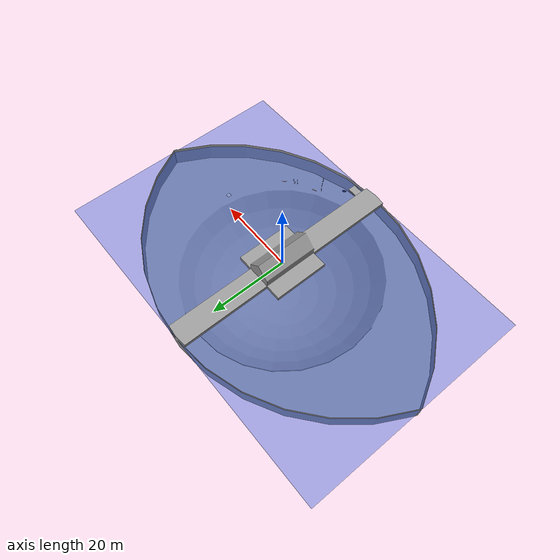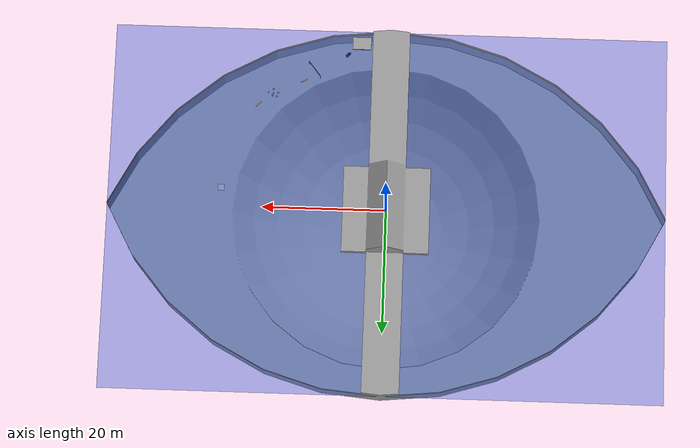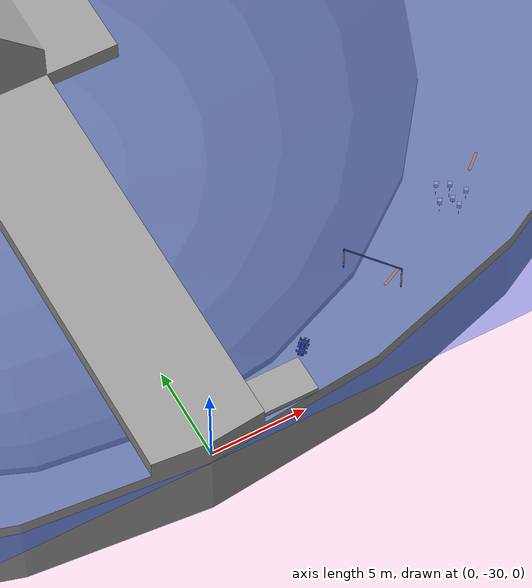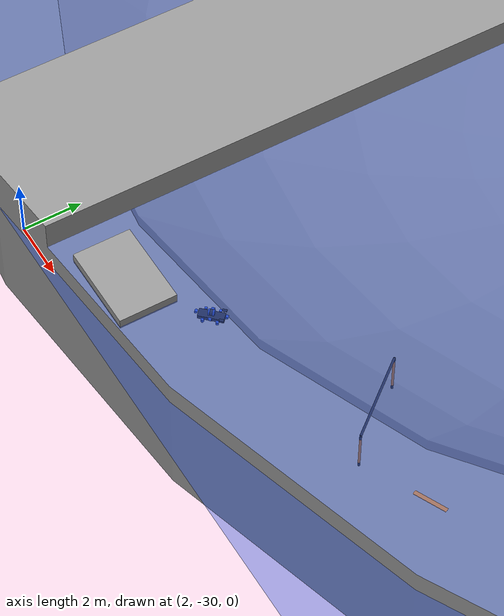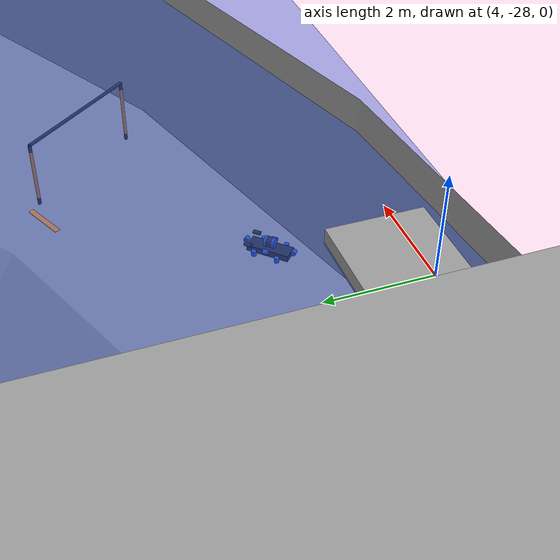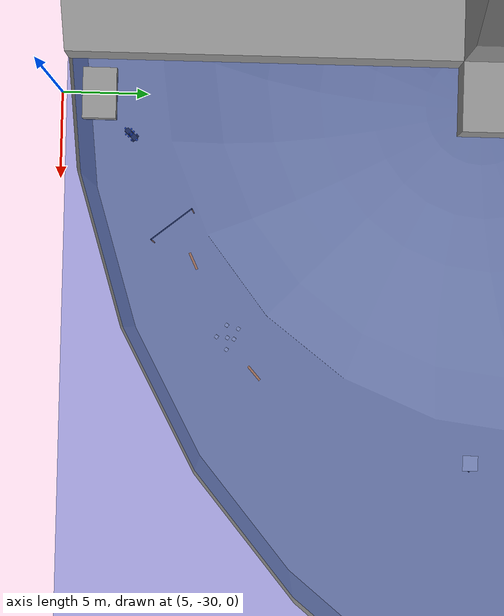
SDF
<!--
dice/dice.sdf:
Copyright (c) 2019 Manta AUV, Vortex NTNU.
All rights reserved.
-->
<?xml version="1.0" ?>
<sdf version="1.5">
  <world name="default">
    <gui>
      <camera name="user_camera">
        <pose>4.31615 -34.1599 10.3989 0 0.839643 1.0962</pose>
      </camera>
    </gui>

    <scene>
          <ambient>0.25 0.3 1 1</ambient>
          <grid>0</grid>
          <background>0.25 0.3 1 1</background>
          <shadows>1</shadows>
    </scene>

    <light type="directional" name="sun0">
      <cast_shadows>1</cast_shadows>
      <pose>8 -21 10 0 0.8 -2.8</pose>
      <diffuse>0.8 0.8 0.8 1</diffuse>
      <specular>0.2 0.2 0.2 1</specular>
      <attenuation>
        <range>1000</range>
        <constant>0.9</constant>
        <linear>0.01</linear>
        <quadratic>0.001</quadratic>
      </attenuation>
      <direction>-0.5 0.1 -0.9</direction>
    </light>
    <light type="directional" name="sun1">
      <cast_shadows>1</cast_shadows>
      <pose>8 -20 10 0 0.8 0</pose>
      <diffuse>0.8 0.8 0.8 1</diffuse>
      <specular>0.2 0.2 0.2 1</specular>
      <attenuation>
        <range>1000</range>
        <constant>0.9</constant>
        <linear>0.01</linear>
        <quadratic>0.001</quadratic>
      </attenuation>
      <direction>-0.5 0.1 -0.9</direction>
    </light>
    <light type="directional" name="sun2">
      <cast_shadows>1</cast_shadows>
      <pose>8 -19 10 0 0 0</pose>
      <diffuse>0.8 0.8 0.8 1</diffuse>
      <specular>0.2 0.2 0.2 1</specular>
      <attenuation>
        <range>1000</range>
        <constant>0.9</constant>
        <linear>0.01</linear>
        <quadratic>0.001</quadratic>
      </attenuation>
      <direction>-0.5 0.1 -0.9</direction>
    </light>
    <light type="directional" name="sun3">
      <cast_shadows>1</cast_shadows>
      <pose>8 -19 10 1.75 0 0</pose>
      <diffuse>0.8 0.8 0.8 1</diffuse>
      <specular>0.2 0.2 0.2 1</specular>
      <attenuation>
        <range>1000</range>
        <constant>0.9</constant>
        <linear>0.01</linear>
        <quadratic>0.001</quadratic>
      </attenuation>
      <direction>-0.5 0.1 -0.9</direction>
    </light>
    <light type="directional" name="sun4">
      <cast_shadows>1</cast_shadows>
      <pose>8 -19 10 1.75 0 2.9</pose>
      <diffuse>0.8 0.8 0.8 1</diffuse>
      <specular>0.2 0.2 0.2 1</specular>
      <attenuation>
        <range>1000</range>
        <constant>0.9</constant>
        <linear>0.01</linear>
        <quadratic>0.001</quadratic>
      </attenuation>
      <direction>-0.5 0.1 -0.9</direction>
    </light>

    <model name="ceiling_plane">
      <static>true</static>
      <pose>0 0 -0.8 0 0 0</pose>
      <link name="link">
        <visual name="visual">
          <cast_shadows>false</cast_shadows>
          <geometry>
            <box>
              <size>90 60 .001</size>
            </box>
          </geometry>
          <material>
            <script>
              <uri>file://media/materials/scripts/gazebo.material</uri>
              <name>Gazebo/BlueTransparent</name>
            </script>
          </material>
          <transparency>0.6</transparency>
        </visual>
      </link>
    </model>

    <include>
      <uri>model://pool</uri>
    </include>

    <!-- Side A -->
    <model name="dock_side_a">
      <static>true</static>
      <pose>4.8 -28.0 -0.67 0 0 0</pose>
      <link name="link">
        <collision name="collision">
          <geometry>
            <box>
              <size>3 2 0.35</size>
            </box>
          </geometry>
        </collision>
        <visual name="visual">
          <cast_shadows>true</cast_shadows>
          <geometry>
            <box>
              <size>3 2 0.35</size>
            </box>
          </geometry>
          <material>
            <script>
              <uri>file://media/materials/scripts/gazebo.material</uri>
              <name>Gazebo/Grey</name>
            </script>
          </material>
        </visual>
      </link>
    </model>

    <model name="pinger_a">
      <static>true</static>
      <pose>27.6 -4.1 -4.9 0 0 0</pose>
      <link name="link">
        <visual name="visual">
          <cast_shadows>true</cast_shadows>
          <geometry>
            <cylinder>
                <radius> 0.03 </radius>
                <length> 0.15 </length>
            </cylinder>
          </geometry>
          <material>
            <script>
              <uri>file://media/materials/scripts/gazebo.material</uri>
              <name>Gazebo/FlatBlack</name>
            </script>
          </material>
        </visual>
      </link>
    </model>

    <include>
      <name>gate_side_a</name>
      <pose>12.4 -23.6 -0.9 0 0 -0.9</pose>
      <uri>model://2018/gate</uri>
    </include>

    <include>
      <name>dice_side_a</name>
      <pose>19.0 -20.2 -5.0 0 0 -0.6</pose>
      <uri>model://2018/dice</uri>
    </include>

    <include>
      <name>path_marker1_side_a</name>
      <pose>14.2 -22.6 -5.0 0 0 -1.13</pose>
      <uri>model://2018/path_markers</uri>
    </include>

    <include>
      <name>path_marker2_side_a</name>
      <pose>21.5 -18.4 -5.0 0 0 -0.85</pose>
      <uri>model://2018/path_markers</uri>
    </include>

    <include>
      <name>roulette</name>
      <pose>27.0 -4.1 -5.0 0 0 0</pose>
      <uri>model://2018/roulette</uri>
    </include>

    <include>
        <name>robosub</name>
        <pose>7.0 -26.2 -1.2 0 0 0.8</pose>
        <uri>model://cobalt</uri>
    </include>

    <!-- Side B -->

    <!-- Side C -->

    <!-- Side D -->

  </world>
</sdf>

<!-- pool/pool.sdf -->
<sdf version='1.5'>

  <model name='transdec_pool'>
    <pose>0 0 0 0 0 0</pose>
    <self_collide> 0 </self_collide>
    <static> 1</static>

    <link name='pool'>
      <pose>0 0 0 0 0 0</pose>
      <visual name='pool_visual'>
        <geometry>
            <mesh><uri>file://pool/pool.dae</uri></mesh>
        </geometry>
        <material>
            <script>
              <uri>file://media/materials/scripts/gazebo.material</uri>
              <name>Gazebo/Grey</name>
            </script>
          </material>
      </visual>
      <collision name='pool_collision'>
        <geometry>
            <mesh><uri>file://pool/pool.dae</uri></mesh>
        </geometry>
      </collision>
    </link>

  </model>
</sdf>

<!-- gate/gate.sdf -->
<sdf version='1.5'>

  <model name='gate'>
    <pose>0 0 0 0 0 0</pose>
    <self_collide> 0 </self_collide>
    <static> 1</static>

    <link name='gate_top'>
      <pose>0 0 0 0 1.5707 0</pose>
      <visual name='gate_top_vis'>
        <geometry>
          <cylinder>
            <radius>0.0381</radius>
            <length>3.05</length>
          </cylinder>
        </geometry>
        <material>
          <script>
            <uri>file://media/materials/scripts/gazebo.material</uri>
            <name>Gazebo/FlatBlack</name>
          </script>
        </material>
      </visual>
      <collision name='gate_top_collide'>
        <geometry>
          <cylinder>
            <radius>0.0381</radius>
            <length>3.05</length>
          </cylinder>
        </geometry>
      </collision>
    </link>

    <link name='gate_right'>
      <pose>1.525 0 -0.762 0 0 0</pose>
      <visual name='gate_right_vis'>
        <geometry>
          <cylinder>
            <radius>0.0381</radius>
            <length>1.21</length>
          </cylinder>
        </geometry>
        <material>
          <script>
            <uri>file://media/materials/scripts/gazebo.material</uri>
            <name>Gazebo/Orange</name>
          </script>
          <diffuse>0.6 0.3088 0.0468 1</diffuse>
        </material>
      </visual>
      <visual name='gate_right_top'>
        <pose>0 0 0.6858 0 0 0</pose>
        <geometry>
          <cylinder>
            <radius>0.0381</radius>
            <length>0.16</length>
          </cylinder>
        </geometry>
        <material>
          <script>
            <uri>file://media/materials/scripts/gazebo.material</uri>
            <name>Gazebo/FlatBlack</name>
          </script>
        </material>
      </visual>
      <visual name='gate_right_bottom'>
        <pose>0 0 -0.6858 0 0 0</pose>
        <geometry>
          <cylinder>
            <radius>0.0381</radius>
            <length>0.16</length>
          </cylinder>
        </geometry>
        <material>
          <script>
              <uri>file://media/materials/scripts/gazebo.material</uri>
              <name>Gazebo/FlatBlack</name>
          </script>
        </material>
      </visual>
      <collision name='gate_right_collide'>
        <geometry>
          <cylinder>
            <radius>0.0381</radius>
            <length>1.52</length>
          </cylinder>
        </geometry>
      </collision>
    </link>

    <link name='gate_left'>
      <pose>-1.525 0 -0.762 0 0 0</pose>
      <visual name='gate_left_vis'>
        <geometry>
          <cylinder>
            <radius>0.0381</radius>
            <length>1.21</length>
          </cylinder>
        </geometry>
        <material>
          <script>
            <uri>file://media/materials/scripts/gazebo.material</uri>
            <name>Gazebo/Orange</name>
          </script>
          <diffuse>0.6 0.3088 0.0468 1</diffuse>
        </material>
      </visual>
      <visual name='gate_left_top'>
        <pose>0 0 0.6858 0 0 0</pose>
        <geometry>
          <cylinder>
            <radius>0.0381</radius>
            <length>0.16</length>
          </cylinder>
        </geometry>
        <material>
          <script>
            <uri>file://media/materials/scripts/gazebo.material</uri>
            <name>Gazebo/FlatBlack</name>
          </script>
        </material>
      </visual>
      <visual name='gate_left_bottom'>
        <pose>0 0 -0.6858 0 0 0</pose>
        <geometry>
          <cylinder>
            <radius>0.0381</radius>
            <length>0.16</length>
          </cylinder>
        </geometry>
        <material>
          <script>
              <uri>file://media/materials/scripts/gazebo.material</uri>
              <name>Gazebo/FlatBlack</name>
          </script>
        </material>
      </visual>
      <collision name='gate_left_collide'>
        <geometry>
          <cylinder>
            <radius>0.0381</radius>
            <length>1.52</length>
          </cylinder>
        </geometry>
      </collision>
    </link>

  </model>
</sdf>

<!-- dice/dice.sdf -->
<sdf version='1.5'>

  <model name='dice'>
    <pose>0 0 0 0 0 0</pose>
    <self_collide> 0 </self_collide>
    <static> 1</static>

    <link name='one_dice'>
      <pose>0.80 0.5 0.75 0 0 0</pose>
      <visual name='one_dice_vis'>
        <geometry>
          <box>
            <size>0.23 0.23 0.23</size>
          </box>
        </geometry>
        <material>
          <script>
            <uri>model://2018/dice/materials/scripts</uri>
            <uri>model://2018/dice/materials/textures</uri>
            <name>OneFace</name>
          </script>
        </material>
      </visual>

      <visual name='one_dice_cable'>
        <pose> 0 0 -0.375 0 0 0</pose>
        <geometry>
          <cylinder>
            <radius> 0.006 </radius>
            <length> 0.75 </length>
          </cylinder>
        </geometry>
        <material>
          <script>
            <uri> file://media/materials/scripts/gazebo.material</uri>
            <name> Gazebo/Grey </name>
          </script>
        </material>
      </visual>

      <collision name='one_dice_collide'>
        <geometry>
          <box>
            <size>0.23 0.23 0.23</size>
          </box>
        </geometry>
      </collision>
    </link>

    <link name='two_dice'>
      <pose>-0.75 0.35 1.25 0 0 0</pose>
      <visual name='two_dice_vis'>
        <geometry>
          <box>
            <size>0.23 0.23 0.23</size>
          </box>
        </geometry>
        <material>
          <script>
            <uri>model://2018/dice/materials/scripts</uri>
            <uri>model://2018/dice/materials/textures</uri>
            <name>TwoFace</name>
          </script>
        </material>
      </visual>

      <visual name='two_dice_cable'>
        <pose> 0 0 -0.625 0 0 0</pose>
        <geometry>
          <cylinder>
            <radius> 0.006 </radius>
            <length> 1.25 </length>
          </cylinder>
        </geometry>
        <material>
          <script>
            <uri> file://media/materials/scripts/gazebo.material</uri>
            <name> Gazebo/Grey </name>
          </script>
        </material>
      </visual>

      <collision name='two_dice_collide'>
        <geometry>
          <box>
            <size>0.23 0.23 0.23</size>
          </box>
        </geometry>
      </collision>
    </link>

    <link name='three_dice'>
      <pose>-0.05 0.50 1.15 0 0 0</pose>
      <visual name='three_dice_vis'>
        <geometry>
          <box>
            <size>0.23 0.23 0.23</size>
          </box>
        </geometry>
        <material>
          <script>
            <uri>model://2018/dice/materials/scripts</uri>
            <uri>model://2018/dice/materials/textures</uri>
            <name>ThreeFace</name>
          </script>
        </material>
      </visual>

      <visual name='three_dice_cable'>
        <pose> 0 0 -0.575 0 0 0</pose>
        <geometry>
          <cylinder>
            <radius> 0.006 </radius>
            <length> 1.15 </length>
          </cylinder>
        </geometry>
        <material>
          <script>
            <uri> file://media/materials/scripts/gazebo.material</uri>
            <name> Gazebo/Grey </name>
          </script>
        </material>
      </visual>

      <collision name='three_dice_collide'>
        <geometry>
          <box>
            <size>0.23 0.23 0.23</size>
          </box>
        </geometry>
      </collision>
    </link>

    <link name='four_dice'>
      <pose>0.5 -0.5 0.8 0 0 0</pose>
      <visual name='four_dice_vis'>
        <geometry>
          <box>
            <size>0.23 0.23 0.23</size>
          </box>
        </geometry>
        <material>
          <script>
            <uri>model://2018/dice/materials/scripts</uri>
            <uri>model://2018/dice/materials/textures</uri>
            <name>FourFace</name>
          </script>
        </material>
      </visual>

      <visual name='four_dice_cable'>
        <pose> 0 0 -0.4 0 0 0</pose>
        <geometry>
          <cylinder>
            <radius> 0.006 </radius>
            <length> 0.8 </length>
          </cylinder>
        </geometry>
        <material>
          <script>
            <uri> file://media/materials/scripts/gazebo.material</uri>
            <name> Gazebo/Grey </name>
          </script>
        </material>
      </visual>

      <collision name='four_dice_collide'>
        <geometry>
          <box>
            <size>0.23 0.23 0.23</size>
          </box>
        </geometry>
      </collision>
    </link>

    <link name='five_dice'>
      <pose>0.15 0.10 0.5 0 0 0</pose>
      <visual name='five_dice_vis'>
        <geometry>
          <box>
            <size>0.23 0.23 0.23</size>
          </box>
        </geometry>
        <material>
          <script>
            <uri>model://2018/dice/materials/scripts</uri>
            <uri>model://2018/dice/materials/textures</uri>
            <name>FiveFace</name>
          </script>
        </material>
      </visual>

      <visual name='five_dice_cable'>
        <pose> 0 0 -0.25 0 0 0</pose>
        <geometry>
          <cylinder>
            <radius> 0.006 </radius>
            <length> 0.5 </length>
          </cylinder>
        </geometry>
        <material>
          <script>
            <uri> file://media/materials/scripts/gazebo.material</uri>
            <name> Gazebo/Grey </name>
          </script>
        </material>
      </visual>

      <collision name='five_dice_collide'>
        <geometry>
          <box>
            <size>0.23 0.23 0.23</size>
          </box>
        </geometry>
      </collision>
    </link>

    <link name='six_dice'>
      <pose>-0.5 -0.4 0.85 0 0 0</pose>
      <visual name='six_dice_vis'>
        <geometry>
          <box>
            <size>0.23 0.23 0.23</size>
          </box>
        </geometry>
        <material>
          <script>
            <uri>model://2018/dice/materials/scripts</uri>
            <uri>model://2018/dice/materials/textures</uri>
            <name>SixFace</name>
          </script>
        </material>
      </visual>

      <visual name='six_dice_cable'>
        <pose> 0 0 -0.425 0 0 0</pose>
        <geometry>
          <cylinder>
            <radius> 0.006 </radius>
            <length> 0.85 </length>
          </cylinder>
        </geometry>
        <material>
          <script>
            <uri> file://media/materials/scripts/gazebo.material</uri>
            <name> Gazebo/Grey </name>
          </script>
        </material>
      </visual>

      <collision name='six_dice_collide'>
        <geometry>
          <box>
            <size>0.23 0.23 0.23</size>
          </box>
        </geometry>
      </collision>
    </link>

  </model>

</sdf>

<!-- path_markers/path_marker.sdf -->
<sdf version='1.5'>

  <model name='path_marker'>
    <pose>0 0 0 0 0 0</pose>
    <self_collide> 0 </self_collide>
    <static> 1</static>

    <link name='top'>
      <pose>0 0 0 0 0 0</pose>
      <visual name='top_vis'>
        <geometry>
            <box><size>0.15 1.2 0.02</size></box>
        </geometry>
        <material>
          <script>
            <uri>file://media/materials/scripts/gazebo.material</uri>
            <name>Gazebo/Orange</name>
          </script>
          <diffuse>0.6 0.3088 0.0468 1</diffuse>
        </material>
      </visual>
      <collision name='red_collide'>
        <pose>0 0 0 0 0 0</pose>
        <geometry>
            <box><size>0.15 1.2 0.02</size></box>
        </geometry>
      </collision>
    </link>

    <link name='legs'>
      <visual name='leg1'>
        <pose>0 0.5 -0.225 0 0 0</pose>
        <geometry>
          <cylinder>
            <radius>0.01</radius>
            <length>0.45</length>
          </cylinder>
        </geometry>
      </visual>
      <visual name='leg2'>
        <pose>0 -0.5 -0.225 0 0 0</pose>
        <geometry>
          <cylinder>
            <radius>0.01</radius>
            <length>0.45</length>
          </cylinder>
        </geometry>
      </visual>
      <visual name='leg_link'>
        <pose>0 0 -0.45 1.5707 0 0</pose>
        <geometry>
          <cylinder>
            <radius>0.01</radius>
            <length>1</length>
          </cylinder>
        </geometry>
      </visual>
      <collision name='leg_col'>
        <pose>0 0 -0.225 0 0 0</pose>
          <geometry>
            <box><size>0.15 1.2 0.45</size></box>
          </geometry>
      </collision>
    </link>

  </model>
</sdf>

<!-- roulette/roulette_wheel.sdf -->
<sdf version='1.5'>
  <model name='roulette_wheel'>

    <pose> 0 0 0 0 0 0</pose>
    <self_collide> 0 </self_collide>
    <static>0</static>

    <joint name='rotation_joint' type="revolute">
      <parent> roulette_stock </parent>
      <child> roulette_wheel </child>
      <axis>
        <xyz> 0 0 1 </xyz>
      </axis>
      <physics>
        <ode>
          <velocity> 1 </velocity>
        </ode>
      </physics>
    </joint>

    <link name='roulette_wheel'>
      <pose> 0 0 0.35 0 0 0</pose>
      <visual name='roulette_top'>
        <geometry>
          <box>
            <size>1.0 1.00 0.001</size>
          </box>
        </geometry>
        <material>
          <script>
            <uri>model://2018/roulette/materials/scripts</uri>
            <uri>model://2018/roulette/materials/textures</uri>
            <name>Roulette/Face</name>
          </script>
        </material>
      </visual>

      <collision name="roulette_wheel_collision">
        <geometry>
          <box>
            <size>1.0 1.00 0.001</size>
          </box>
        </geometry>
      </collision>
    </link>

    <link name='roulette_stock'>
      <pose> 0 0 0.174 0 0 0 </pose>
      <visual name='roulette_stock_vis'>
        <geometry>
          <cylinder>
            <radius>0.035</radius>
            <length>0.35</length>
          </cylinder>
        </geometry>
        <material>
          <script>
            <uri>file://media/materials/scripts/gazebo.material</uri>
            <name>Gazebo/Grey</name>
          </script>
        </material>
      </visual>
      <collision name='roulette_collide'>
        <geometry>
          <cylinder>
            <radius>0.5</radius>
            <length>0.35</length>
          </cylinder>
        </geometry>
      </collision>
    </link>

  </model>
</sdf>

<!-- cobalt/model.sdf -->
<sdf version='1.5'>

  <model name='robosub_cobalt'>
    <pose>0 0 0.0 0 0 0</pose>
    <self_collide> 0 </self_collide>

    <joint name="hull_frame" type="fixed">
        <parent>frame</parent>
        <child>hull</child>
    </joint>

    <joint name='dive_front_left_frame' type="fixed">
        <parent>frame</parent>
        <child>dive_front_left</child>
    </joint>

    <joint name='dive_front_right_frame' type="fixed">
        <parent>frame</parent>
        <child>dive_front_right</child>
    </joint>

    <joint name='dive_back_left_frame' type="fixed">
        <parent>frame</parent>
        <child>dive_back_left</child>
    </joint>

    <joint name='dive_back_right_frame' type="fixed">
        <parent>frame</parent>
        <child>dive_back_right</child>
    </joint>

    <joint name='strafe_front_frame' type="fixed">
        <parent>frame</parent>
        <child>strafe_front</child>
    </joint>

    <joint name='strafe_back_frame' type="fixed">
        <parent>frame</parent>
        <child>strafe_back</child>
    </joint>

    <joint name='forward_left_frame' type="fixed">
        <parent>frame</parent>
        <child>forward_left</child>
    </joint>

    <joint name='forward_right_frame' type="fixed">
        <parent>frame</parent>
        <child>forward_right</child>
    </joint>

    <joint name='left_camera_frame' type="fixed">
        <parent>frame</parent>
        <child>left_camera</child>
    </joint>

    <joint name='right_camera_frame' type="fixed">
        <parent>frame</parent>
        <child>right_camera</child>
    </joint>

    <joint name='bottom_camera_frame' type="fixed">
        <parent>frame</parent>
        <child>bottom_camera</child>
    </joint>

    <joint name='hydrophone_h0_frame' type="fixed">
        <parent>frame</parent>
        <child>hydrophone_h0</child>
    </joint>

    <joint name='hydrophone_hx_frame' type="fixed">
        <parent>frame</parent>
        <child>hydrophone_hx</child>
    </joint>

    <joint name='hydrophone_hy_frame' type="fixed">
        <parent>frame</parent>
        <child>hydrophone_hy</child>
    </joint>

    <joint name='hydrophone_hz_frame' type="fixed">
        <parent>frame</parent>
        <child>hydrophone_hz</child>
    </joint>

    <link name='hull'>
      <pose>0 0 .082 1.57079632679 0 1.57079632679 </pose>
      <inertial>
        <mass>10</mass>
      </inertial>

      <visual name='bulkhead_visual'>
        <geometry>
              <cylinder>
                <radius>0.1</radius>
                <length>.13</length>
              </cylinder>
        </geometry>
        <material>
            <script>
              <uri>file://media/materials/scripts/gazebo.material</uri>
              <name>Gazebo/Black</name>
            </script>
          </material>
      </visual>

      <visual name='front_ring_visual'>
      <pose>0 0 .075 0 0 0</pose>
        <geometry>
              <cylinder>
                <radius>0.102</radius>
                <length>.05</length>
              </cylinder>
        </geometry>
        <material>
            <script>
              <uri>file://media/materials/scripts/gazebo.material</uri>
              <name>Gazebo/Blue</name>
            </script>
          </material>
      </visual>
      <visual name='rear_ring_visual'>
      <pose>0 0 -.075 0 0 0</pose>
        <geometry>
              <cylinder>
                <radius>0.102</radius>
                <length>.05</length>
              </cylinder>
        </geometry>
        <material>
            <script>
              <uri>file://media/materials/scripts/gazebo.material</uri>
              <name>Gazebo/Blue</name>
            </script>
          </material>
      </visual>
      <visual name='front_tube_visual'>
      <pose>0 0 .235 0 0 0</pose>
        <geometry>
              <cylinder>
                <radius>0.1</radius>
                <length>.32</length>
              </cylinder>
        </geometry>
        <material>
            <script>
              <uri>file://media/materials/scripts/gazebo.material</uri>
              <name>Gazebo/GreyTransparent</name>
            </script>
            <diffuse>0.6 0.6 0.6 0.6</diffuse>
          </material>
      </visual>

      <visual name='rear_tube_visual'>
      <pose>0 0 -.235 0 0 0</pose>
        <geometry>
              <cylinder>
                <radius>0.1</radius>
                <length>.32</length>
              </cylinder>
        </geometry>
        <material>
            <script>
              <uri>file://media/materials/scripts/gazebo.material</uri>
              <name>Gazebo/GreyTransparent</name>
            </script>
            <diffuse>0.6 0.6 0.6 0.6</diffuse>
          </material>
      </visual>
      <collision name='hull_collision'>
        <geometry>
              <cylinder>
                <radius>0.1</radius>
                <length>.77</length>
              </cylinder>
            </geometry>
      </collision>
      <velocity_decay>
          <linear>0.002</linear>
          <angular>0.002</angular>
      </velocity_decay>
    </link>

    <link name='hydrophone_h0'>
      <pose> 0 0 0 0 0 0 </pose>
      <inertial>
        <mass> 0.001 </mass>
      </inertial>
    </link>

    <link name='hydrophone_hx'>
      <pose> 0.015 0 0 0 0 0 </pose>
      <inertial>
        <mass> 0.001 </mass>
      </inertial>
    </link>

    <link name='hydrophone_hy'>
      <pose> 0 0.015 0 0 0 0 </pose>
      <inertial>
        <mass> 0.001 </mass>
      </inertial>
    </link>

    <link name='hydrophone_hz'>
      <pose> 0 0 0.015 0 0 0 </pose>
      <inertial>
        <mass> 0.001 </mass>
      </inertial>
    </link>

    <link name='frame'>
      <pose>0 0 -0.088 0 0 0</pose>
      <inertial>
        <mass>16.5</mass>
      </inertial>

      <visual name='frame_visual'>
        <geometry>
              <box>
                <size>.85 .3 .13</size>
              </box>
            </geometry>
          <material>
            <script>
              <uri>file://media/materials/scripts/gazebo.material</uri>
              <name>Gazebo/FlatBlack</name>
            </script>
          </material>
      </visual>

      <collision name='frame_collision'>
        <geometry>
              <box>
                <size>.85 .3 .13</size>
              </box>
            </geometry>
      </collision>
      <velocity_decay>
          <linear>0.002</linear>
          <angular>0.002</angular>
      </velocity_decay>
    </link>

    <link name='dive_front_left'>
      <pose>0.235 0.23 -0.1 0 3.14159 0</pose>
      <inertial>
        <mass>0.344</mass>
      </inertial>
      <visual name='dive_front_left_visual'>
        <geometry>
          <cylinder>
            <radius>0.0485</radius>
            <length>0.101</length>
          </cylinder>
        </geometry>
      <material>
        <script>
          <uri>file://media/materials/scripts/gazebo.material</uri>
          <name>Gazebo/Blue</name>
        </script>
      </material>
      </visual>
      <collision name='dive_front_left_collision'>
        <geometry>
          <cylinder>
            <radius>0.0485</radius>
            <length>0.101</length>
          </cylinder>
        </geometry>
      </collision>
    </link>

    <link name='dive_front_right'>
      <pose>0.235 -0.23 -0.1 0 3.14159 0</pose>
      <inertial>
        <mass>0.344</mass>
      </inertial>
      <visual name='dive_front_right_visual'>
        <geometry>
          <cylinder>
            <radius>0.0485</radius>
            <length>0.101</length>
          </cylinder>
        </geometry>
      <material>
        <script>
          <uri>file://media/materials/scripts/gazebo.material</uri>
          <name>Gazebo/Blue</name>
        </script>
      </material>
      </visual>
      <collision name='dive_front_right_collision'>
        <geometry>
          <cylinder>
            <radius>0.0485</radius>
            <length>0.101</length>
          </cylinder>
        </geometry>
      </collision>
    </link>

    <link name='dive_back_left'>
      <pose>-0.235 0.23 -0.1 0 3.14159 0</pose>
      <inertial>
        <mass>0.344</mass>
      </inertial>
      <visual name='dive_back_left_visual'>
        <geometry>
          <cylinder>
            <radius>0.0485</radius>
            <length>0.101</length>
          </cylinder>
        </geometry>
      <material>
        <script>
          <uri>file://media/materials/scripts/gazebo.material</uri>
          <name>Gazebo/Blue</name>
        </script>
      </material>
      </visual>
      <collision name='dive_back_left_collision'>
        <geometry>
          <cylinder>
            <radius>0.0485</radius>
            <length>0.101</length>
          </cylinder>
        </geometry>
      </collision>
    </link>

    <link name='dive_back_right'>
      <pose>-0.235 -0.23 -0.1 0 3.14159 0</pose>
      <inertial>
        <mass>0.344</mass>
      </inertial>
      <visual name='dive_back_right_visual'>
        <geometry>
          <cylinder>
            <radius>0.0485</radius>
            <length>0.101</length>
          </cylinder>
        </geometry>
      <material>
        <script>
          <uri>file://media/materials/scripts/gazebo.material</uri>
          <name>Gazebo/Blue</name>
        </script>
      </material>
      </visual>
      <collision name='dive_back_right_collision'>
        <geometry>
          <cylinder>
            <radius>0.0485</radius>
            <length>0.101</length>
          </cylinder>
        </geometry>
      </collision>
    </link>

    <link name='strafe_front'>
      <pose>0.49 0 -0.01 -1.57079632679 0 0</pose>
      <inertial>
        <mass>0.344</mass>
      </inertial>
      <visual name='strafe_front_visual'>
        <geometry>
          <cylinder>
            <radius>0.0485</radius>
            <length>0.101</length>
          </cylinder>
        </geometry>
      <material>
        <script>
          <uri>file://media/materials/scripts/gazebo.material</uri>
          <name>Gazebo/Blue</name>
        </script>
      </material>
      </visual>
      <collision name='strafe_front_collision'>
        <geometry>
          <cylinder>
            <radius>0.0485</radius>
            <length>0.101</length>
          </cylinder>
        </geometry>
      </collision>
    </link>

    <link name='strafe_back'>
      <pose>-0.49 0 -0.01 -1.57079632679 0 0</pose>
      <inertial>
        <mass>0.344</mass>
      </inertial>
      <visual name='strafe_back_visual'>
        <geometry>
          <cylinder>
            <radius>0.0485</radius>
            <length>0.101</length>
          </cylinder>
        </geometry>
      <material>
        <script>
          <uri>file://media/materials/scripts/gazebo.material</uri>
          <name>Gazebo/Blue</name>
        </script>
      </material>
      </visual>
      <collision name='strafe_back_collision'>
        <geometry>
          <cylinder>
            <radius>0.0485</radius>
            <length>0.101</length>
          </cylinder>
        </geometry>
      </collision>
    </link>

    <link name='forward_left'>
      <pose>0 0.2075 -0.01 0 -1.57079632679 0</pose>
      <inertial>
        <mass>0.344</mass>
      </inertial>
      <visual name='forward_left_visual'>
        <geometry>
          <cylinder>
            <radius>0.0485</radius>
            <length>0.101</length>
          </cylinder>
        </geometry>
      <material>
        <script>
          <uri>file://media/materials/scripts/gazebo.material</uri>
          <name>Gazebo/Blue</name>
        </script>
      </material>
      </visual>
      <collision name='forward_left_collision'>
        <geometry>
          <cylinder>
            <radius>0.0485</radius>
            <length>0.101</length>
          </cylinder>
        </geometry>
      </collision>
    </link>

    <link name='forward_right'>
      <pose>0 -0.2075 -0.01 0 -1.57079632679 0</pose>
      <inertial>
        <mass>0.344</mass>
      </inertial>
      <visual name='forward_right_visual'>
        <geometry>
          <cylinder>
            <radius>0.0485</radius>
            <length>0.101</length>
          </cylinder>
        </geometry>
      <material>
        <script>
          <uri>file://media/materials/scripts/gazebo.material</uri>
          <name>Gazebo/Blue</name>
        </script>
      </material>
      </visual>
      <collision name='forward_right_collision'>
        <geometry>
          <cylinder>
            <radius>0.0485</radius>
            <length>0.101</length>
          </cylinder>
        </geometry>
      </collision>
    </link>

    <link name='left_camera'>
      <pose>0.37 0.20 0.04 0 1.57079632679 0</pose>
      <inertial>
        <mass>0.73</mass>
      </inertial>
      <visual name='left_camera_visual'>
        <geometry>
          <cylinder>
            <radius>0.0405</radius>
            <length>0.15</length>
          </cylinder>
        </geometry>
      <material>
        <script>
          <uri>file://media/materials/scripts/gazebo.material</uri>
          <name>Gazebo/Black</name>
        </script>
      </material>
      </visual>
      <collision name='left_camera_collision'>
        <geometry>
          <cylinder>
            <radius>0.0405</radius>
            <length>0.15</length>
          </cylinder>
        </geometry>
      </collision>
      <sensor name="left" type="wideanglecamera">
          <pose>0 0 0.14 0 -1.570796 0</pose>
          <camera>
              <horizontal_fov>3.1415</horizontal_fov>
              <image>
                  <width>1384</width>
                  <height>1032</height>
              </image>
              <clip>
                  <near>0.001</near>
                  <far>100</far>
              </clip>
              <lens>
                  <type>custom</type>
                  <custom_function>
                      <c1>685.4</c1>
                      <c2>525.2</c2>
                      <f>307.53251966606937</f>
                      <fun>tan</fun>
                  </custom_function>
                  <scale_to_hfov>true</scale_to_hfov>
                  <cutoff_angle>1.57075</cutoff_angle>
                  <env_texture_size>512</env_texture_size>
              </lens>
              <distortion>
                <k1>-.16492342967649815</k1>
                <k2>0.016187172468110342</k2>
                <k3>-0.00038951913220274415</k3>
                <p1>0</p1>
                <p2>0</p2>
                <center>0 0</center>
              </distortion>
          </camera>
          <plugin name="left_camera_controller" filename="libgazebo_ros_camera.so">
              <cameraName>left</cameraName>
              <imageTopicName>/camera/left/image_raw</imageTopicName>
          </plugin>
          <always_on>1</always_on>
          <update_rate>5</update_rate>
      </sensor>
    </link>

    <link name='right_camera'>
      <pose>0.37 -0.20 0.04 0 1.57079632679 0</pose>
      <inertial>
        <mass>0.73</mass>
      </inertial>
      <visual name='right_camera_visual'>
        <geometry>
          <cylinder>
            <radius>0.0405</radius>
            <length>0.15</length>
          </cylinder>
        </geometry>
      <material>
        <script>
          <uri>file://media/materials/scripts/gazebo.material</uri>
          <name>Gazebo/Black</name>
        </script>
      </material>
      </visual>
      <collision name='right_camera_collision'>
        <geometry>
          <cylinder>
            <radius>0.0405</radius>
            <length>0.15</length>
          </cylinder>
        </geometry>
      </collision>
      <sensor name="right" type="wideanglecamera">
          <pose>0 0 0.14 0 -1.570796 0</pose>
          <camera>
              <horizontal_fov>3.1415</horizontal_fov>
              <image>
                  <width>1384</width>
                  <height>1032</height>
              </image>
              <clip>
                  <near>0.1</near>
                  <far>100</far>
              </clip>
              <lens>
                  <type>custom</type>
                  <custom_function>
                      <c1>667.1</c1>
                      <c2>536.7</c2>
                      <f>317.86251966606937</f>
                      <fun>tan</fun>
                  </custom_function>
                  <scale_to_hfov>true</scale_to_hfov>
                  <cutoff_angle>1.57075</cutoff_angle>
                  <env_texture_size>512</env_texture_size>
              </lens>
              <distortion>
                <k1>-.16492342967649815</k1>
                <k2>0.016187172468110342</k2>
                <k3>-0.00038951913220274415</k3>
                <p1>0</p1>
                <p2>0</p2>
                <center>0 0</center>
              </distortion>
          </camera>
          <plugin name="right_camera_controller" filename="libgazebo_ros_camera.so">
              <cameraName>right</cameraName>
              <imageTopicName>/camera/right/image_raw</imageTopicName>
          </plugin>
          <always_on>1</always_on>
          <update_rate>5</update_rate>
      </sensor>
    </link>

    <link name='bottom_camera'>
      <pose>0 0 -0.1 0 3.14159265358 0</pose>
      <inertial>
        <mass>0.73</mass>
      </inertial>
      <visual name='bottom_camera_visual'>
        <geometry>
          <cylinder>
            <radius>0.0405</radius>
            <length>0.15</length>
          </cylinder>
        </geometry>
      <material>
        <script>
          <uri>file://media/materials/scripts/gazebo.material</uri>
          <name>Gazebo/Black</name>
        </script>
      </material>
      </visual>
      <collision name='bottom_camera_collision'>
        <geometry>
          <cylinder>
            <radius>0.0405</radius>
            <length>0.15</length>
          </cylinder>
        </geometry>
      </collision>
      <sensor name="bottom" type="wideanglecamera">
          <pose>0 0 0.14 0 -1.570796 0</pose>
          <camera>
              <horizontal_fov>3.1415</horizontal_fov>
              <image>
                  <width>1384</width>
                  <height>1032</height>
              </image>
              <clip>
                  <near>0.1</near>
                  <far>100</far>
              </clip>
              <lens>
                  <type>custom</type>
                  <custom_function>
                      <c1>691.5</c1>
                      <c2>515.5</c2>
                      <f>341.43251966606937</f>
                      <fun>tan</fun>
                  </custom_function>
                  <scale_to_hfov>true</scale_to_hfov>
                  <cutoff_angle>1.57075</cutoff_angle>
                  <env_texture_size>512</env_texture_size>
              </lens>
              <distortion>
                <k1>-.16492342967649815</k1>
                <k2>0.016187172468110342</k2>
                <k3>-0.00038951913220274415</k3>
                <p1>0</p1>
                <p2>0</p2>
                <center>0 0</center>
              </distortion>
          </camera>
          <plugin name="bottom_camera_controller" filename="libgazebo_ros_camera.so">
              <cameraName>bottom</cameraName>
              <imageTopicName>/camera/bottom/image_raw</imageTopicName>
          </plugin>
          <always_on>1</always_on>
          <update_rate>5</update_rate>
      </sensor>
    </link>

    <allow_auto_disable>0</allow_auto_disable>

    <plugin name="thruster" filename="libthruster.so"/>

    <plugin name="buoyancy_improved" filename="libbuoyancy_improved.so">
      <fluid_density>1000</fluid_density>
      <link name="frame">
        <volume>0.0026</volume>
      </link>

      <!-- thrusters -->
      <link name="dive_back_right">
        <volume>0.000334</volume>
      </link>
      <link name="dive_back_left">
        <volume>0.000334</volume>
      </link>
      <link name="dive_front_right">
        <volume>0.000334</volume>
      </link>
      <link name="dive_front_left">
        <volume>0.000334</volume>
      </link>
      <link name="strafe_front">
        <volume>0.000334</volume>
      </link>
      <link name="strafe_back">
        <volume>0.000334</volume>
      </link>
      <link name="forward_right">
        <volume>0.000334</volume>
      </link>
      <link name="forward_left">
        <volume>0.000334</volume>
      </link>

    </plugin>
    <plugin name="imu" filename="libgazebo_ros_imu.so">
      <alwaysOn>true</alwaysOn>
      <bodyName>frame</bodyName>
      <topicName>gazebo/rs_imu</topicName>
      <serviceName>gazebo/rs_imu_service</serviceName>
      <gaussianNoise>0.0</gaussianNoise>
      <updateRate>20.0</updateRate>
    </plugin>
   <plugin name="marker_dropper" filename="libmarkerdrop.so"/>
   <plugin name="torpedo_shooter" filename="libtorpedoshoot.so"/>
  </model>
</sdf>
